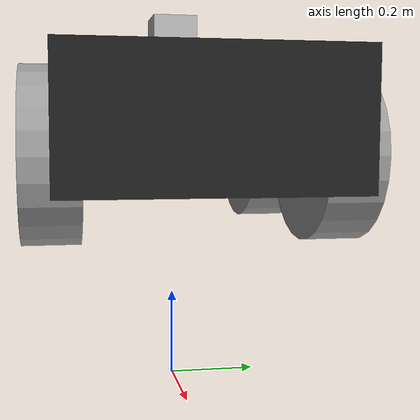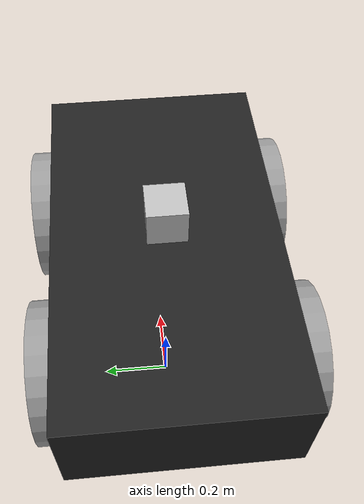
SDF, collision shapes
<?xml version="1.0" ?>
<sdf version="1.4">
  <model name="husky">
    <pose>0 0 .5 0 0 0</pose>
    <link name="base_link">
      <collision name="collision">
        <pose>0 0 0.1 0 -0 0</pose>
        <geometry>
          <box>
            <size>1.0074 0.5709 0.2675</size>
          </box>
        </geometry>
        <max_contacts>10</max_contacts>
        <surface>
          <bounce />
          <friction>
            <ode />
          </friction>
          <contact>
            <ode />
          </contact>
        </surface>
      </collision>
      <inertial>
        <mass>33.855</mass>
        <pose>-0.0856132 -0.000839955 0.238145 0 -0 0</pose>
        <inertia>
          <ixx>2.2343</ixx>
          <ixy>-0.023642</ixy>
          <ixz>0.275174</ixz>
          <iyy>3.42518</iyy>
          <iyz>0.00239624</iyz>
          <izz>2.1241</izz>
        </inertia>
      </inertial>
      <visual name="base">
        <pose>0 0 0 0 -0 0</pose>
        <geometry>
          <mesh>
            <uri>model://husky_wpi/meshes/base_link.stl</uri>
          </mesh>
        </geometry>
        <material>
          <script>
            <name>Gazebo/FlatBlack</name>
            <uri>__default__</uri>
          </script>
        </material>
      </visual>
      <visual name="top_plate">
        <pose>0 0 0 0 -0 0</pose>
        <geometry>
          <mesh>
            <uri>model://husky_wpi/meshes/top_plate.stl</uri>
          </mesh>
        </geometry>
        <material>
          <script>
            <name>Gazebo/Yellow</name>
            <uri>__default__</uri>
          </script>
        </material>
      </visual>
      <visual name="front_bumper">
        <pose>0.47 0 0.091 0 -0 0</pose>
        <geometry>
          <mesh>
            <uri>model://husky_wpi/meshes/bumper.stl</uri>
          </mesh>
        </geometry>
        <material>
          <script>
            <name>Gazebo/FlatBlack</name>
            <uri>__default__</uri>
          </script>
        </material>
      </visual>
      <visual name="rear_bumper">
        <pose>-0.47 0 0.091 0 -0 3.141</pose>
        <geometry>
          <mesh>
            <uri>model://husky_wpi/meshes/bumper.stl</uri>
          </mesh>
        </geometry>
        <material>
          <script>
            <name>Gazebo/FlatBlack</name>
            <uri>__default__</uri>
          </script>
        </material>
      </visual>
      <visual name="user_rail">
        <pose>0.272 0 0.245 0 -0 0</pose>
        <geometry>
          <mesh>
            <uri>model://husky_wpi/meshes/user_rail.stl</uri>
          </mesh>
        </geometry>
        <material>
          <script>
            <name>Gazebo/Grey</name>
            <uri>__default__</uri>
          </script>
        </material>
      </visual>
      <velocity_decay>
        <linear>0</linear>
        <angular>0</angular>
      </velocity_decay>
      <self_collide>0</self_collide>
      <kinematic>0</kinematic>
      <gravity>1</gravity>
    </link>
    <link name="back_left_wheel">
      <pose>-0.256 0.285475 0.035 0 -0 0</pose>
      <inertial>
        <mass>2.6357</mass>
        <pose>0 0 0 0 -0 0</pose>
        <inertia>
          <ixx>0.0246688</ixx>
          <ixy>0</ixy>
          <ixz>0</ixz>
          <iyy>0.0246688</iyy>
          <iyz>0</iyz>
          <izz>0.0441058</izz>
        </inertia>
      </inertial>
      <collision name="back_left_wheel_collision">
        <pose>0 0 0 -1.5707 0 0</pose>
        <geometry>
          <cylinder>
            <radius>0.17775</radius>
            <length>0.1143</length>
          </cylinder>
        </geometry>
        <surface>
          <friction>
            <ode>
              <mu>100000</mu>
              <mu2>100000</mu2>
              <slip1>0</slip1>
              <slip2>0</slip2>
            </ode>
          </friction>
          <bounce />
          <contact>
            <ode />
          </contact>
        </surface>
        <max_contacts>10</max_contacts>
      </collision>
      <visual name="back_left_wheel">
        <pose>0 0 0 -3.14159 0 0</pose>
        <geometry>
          <mesh>
            <uri>model://husky_wpi/meshes/wheel.stl</uri>
          </mesh>
        </geometry>
        <material>
          <script>
            <name>Gazebo/Grey</name>
            <uri>__default__</uri>
          </script>
        </material>
      </visual>
      <velocity_decay>
        <linear>0</linear>
        <angular>0</angular>
      </velocity_decay>
      <self_collide>0</self_collide>
      <kinematic>0</kinematic>
      <gravity>1</gravity>
    </link>
    <joint name="back_left_joint" type="revolute">
      <parent>base_link</parent>
      <child>back_left_wheel</child>
      <axis>
        <xyz>0 1 0</xyz>
        <limit>
          <lower>-1e+16</lower>
          <upper>1e+16</upper>
        </limit>
      </axis>
      <physics>
        <ode>
          <limit>
            <cfm>0</cfm>
            <erp>0.9</erp>
          </limit>
        </ode>
      </physics>
    </joint>
    <link name="back_right_wheel">
      <pose>-0.256 -0.285475 0.035 0 -0 0</pose>
      <inertial>
        <mass>2.6357</mass>
        <pose>0 0 0 0 -0 0</pose>
        <inertia>
          <ixx>0.0246688</ixx>
          <ixy>0</ixy>
          <ixz>0</ixz>
          <iyy>0.0246688</iyy>
          <iyz>0</iyz>
          <izz>0.0441058</izz>
        </inertia>
      </inertial>
      <collision name="back_right_wheel_collision">
        <pose>0 0 0 -1.5707 0 0</pose>
        <geometry>
          <cylinder>
            <radius>0.17775</radius>
            <length>0.1143</length>
          </cylinder>
        </geometry>
        <surface>
          <friction>
            <ode>
              <mu>100000</mu>
              <mu2>100000</mu2>
              <slip1>0</slip1>
              <slip2>0</slip2>
            </ode>
          </friction>
          <bounce />
          <contact>
            <ode />
          </contact>
        </surface>
        <max_contacts>10</max_contacts>
      </collision>
      <visual name="back_right_wheel">
        <pose>0 0 0 -3.14159 0 0</pose>
        <geometry>
          <mesh>
            <uri>model://husky_wpi/meshes/wheel.stl</uri>
          </mesh>
        </geometry>
        <material>
          <script>
            <name>Gazebo/Grey</name>
            <uri>__default__</uri>
          </script>
        </material>
      </visual>
      <velocity_decay>
        <linear>0</linear>
        <angular>0</angular>
      </velocity_decay>
      <self_collide>0</self_collide>
      <kinematic>0</kinematic>
      <gravity>1</gravity>
    </link>
    <joint name="back_right_joint" type="revolute">
      <parent>base_link</parent>
      <child>back_right_wheel</child>
      <axis>
        <xyz>0 1 0</xyz>
        <limit>
          <lower>-1e+16</lower>
          <upper>1e+16</upper>
        </limit>
      </axis>
      <physics>
        <ode>
          <limit>
            <cfm>0</cfm>
            <erp>0.9</erp>
          </limit>
        </ode>
      </physics>
    </joint>
    <link name="front_left_wheel">
      <pose>0.256 0.285475 0.035 0 -0 0</pose>
      <inertial>
        <mass>2.6357</mass>
        <pose>0 0 0 0 -0 0</pose>
        <inertia>
          <ixx>0.0246688</ixx>
          <ixy>0</ixy>
          <ixz>0</ixz>
          <iyy>0.0246688</iyy>
          <iyz>0</iyz>
          <izz>0.0441058</izz>
        </inertia>
      </inertial>
      <collision name="front_left_wheel_collision">
        <pose>0 0 0 -1.5707 0 0</pose>
        <geometry>
          <cylinder>
            <radius>0.17775</radius>
            <length>0.1143</length>
          </cylinder>
        </geometry>
        <surface>
          <friction>
            <ode>
              <mu>100000</mu>
              <mu2>100000</mu2>
              <slip1>0</slip1>
              <slip2>0</slip2>
            </ode>
          </friction>
          <bounce />
          <contact>
            <ode />
          </contact>
        </surface>
        <max_contacts>10</max_contacts>
      </collision>
      <visual name="front_left_wheel">
        <pose>0 0 0 -3.14159 0 0</pose>
        <geometry>
          <mesh>
            <uri>model://husky_wpi/meshes/wheel.stl</uri>
          </mesh>
        </geometry>
        <material>
          <script>
            <name>Gazebo/Grey</name>
            <uri>__default__</uri>
          </script>
        </material>
      </visual>
      <velocity_decay>
        <linear>0</linear>
        <angular>0</angular>
      </velocity_decay>
      <self_collide>0</self_collide>
      <kinematic>0</kinematic>
      <gravity>1</gravity>
    </link>
    <joint name="front_left_joint" type="revolute">
      <parent>base_link</parent>
      <child>front_left_wheel</child>
      <axis>
        <xyz>0 1 0</xyz>
        <limit>
          <lower>-1e+16</lower>
          <upper>1e+16</upper>
        </limit>
      </axis>
      <physics>
        <ode>
          <limit>
            <cfm>0</cfm>
            <erp>0.9</erp>
          </limit>
        </ode>
      </physics>
    </joint>
    <link name="front_right_wheel">
      <pose>0.256 -0.285475 0.035 0 -0 0</pose>
      <inertial>
        <mass>2.6357</mass>
        <pose>0 0 0 0 -0 0</pose>
        <inertia>
          <ixx>0.0246688</ixx>
          <ixy>0</ixy>
          <ixz>0</ixz>
          <iyy>0.0246688</iyy>
          <iyz>0</iyz>
          <izz>0.0441058</izz>
        </inertia>
      </inertial>
      <collision name="front_right_wheel_collision">
        <pose>0 0 0 -1.5707 0 0</pose>
        <geometry>
          <cylinder>
            <radius>0.17775</radius>
            <length>0.1143</length>
          </cylinder>
        </geometry>
        <surface>
          <friction>
            <ode>
              <mu>100000</mu>
              <mu2>100000</mu2>
              <slip1>0</slip1>
              <slip2>0</slip2>
            </ode>
          </friction>
          <bounce />
          <contact>
            <ode />
          </contact>
        </surface>
        <max_contacts>10</max_contacts>
      </collision>
      <visual name="front_right_wheel">
        <pose>0 0 0 -3.14159 0 0</pose>
        <geometry>
          <mesh>
            <uri>model://husky_wpi/meshes/wheel.stl</uri>
          </mesh>
        </geometry>
        <material>
          <script>
            <name>Gazebo/Grey</name>
            <uri>__default__</uri>
          </script>
        </material>
      </visual>
      <velocity_decay>
        <linear>0</linear>
        <angular>0</angular>
      </velocity_decay>
      <self_collide>0</self_collide>
      <kinematic>0</kinematic>
      <gravity>1</gravity>
    </link>
    <joint name="front_right_joint" type="revolute">
      <parent>base_link</parent>
      <child>front_right_wheel</child>
      <axis>
        <xyz>0 1 0</xyz>
        <limit>
          <lower>-1e+16</lower>
          <upper>1e+16</upper>
        </limit>
      </axis>
      <physics>
        <ode>
          <limit>
            <cfm>0</cfm>
            <erp>0.9</erp>
          </limit>
        </ode>
      </physics>
    </joint>
    <link name="stereocamera">
      <pose>0 0 .3 0 0 0</pose>
      <inertial>
        <mass>0.1</mass>
      </inertial>
      <collision name="collision">
        <geometry>
          <box>
            <size>0.1 0.1 0.1</size>
          </box>
        </geometry>
      </collision>
      <visual name="visual">
        <geometry>
          <box>
            <size>0.1 0.1 0.1</size>
          </box>
        </geometry>
      </visual>
      <sensor name="camera" type="multicamera">
        <always_on>1</always_on>
        <update_rate>30</update_rate>
        <visualize>false</visualize>
        <camera name="left">
          <pose>0 0.2 0 0 0 0</pose>
          <horizontal_fov>1.047</horizontal_fov>
          <image>
            <width>1080</width>
            <height>720</height>
          </image>
          <clip>
            <near>0.1</near>
            <far>100</far>
          </clip>
        </camera>
        <camera name="right">
          <pose>0 -0.2 0 0 0 0</pose>
          <horizontal_fov>1.047</horizontal_fov>
          <image>
            <width>1080</width>
            <height>720</height>
          </image>
          <clip>
            <near>0.1</near>
            <far>100</far>
          </clip>
        </camera>
        <plugin name="camera_controller" filename="libgazebo_ros_multicamera.so">
          <alwaysOn>true</alwaysOn>
          <updateRate>0.0</updateRate>
          <cameraName>rrbot/camera1</cameraName>
          <imageTopicName>image_raw</imageTopicName>
          <cameraInfoTopicName>camera_info</cameraInfoTopicName>
          <frameName>base_link</frameName>
          <hackBaseline>0.07</hackBaseline>
          <distortionK1>0.0</distortionK1>
          <distortionK2>0.0</distortionK2>
          <distortionK3>0.0</distortionK3>
          <distortionT1>0.0</distortionT1>
          <distortionT2>0.0</distortionT2>
        </plugin>
      </sensor>
    </link>
    <joint name="stereo_camera_joint" type="revolute">
      <child>stereocamera</child>
      <parent>base_link</parent>
      <axis>
        <xyz>0 0 1</xyz>
        <limit>
          <upper>0</upper>
          <lower>0</lower>
        </limit>
      </axis>
    </joint>
    <plugin name="husky_plugin" filename="libhusky_plugin.so">
      <alwaysOn>true</alwaysOn>
      <updateRate>100.0</updateRate>
      <backLeftJoint>back_left_joint</backLeftJoint>
      <backRightJoint>back_right_joint</backRightJoint>
      <frontLeftJoint>front_left_joint</frontLeftJoint>
      <frontRightJoint>front_right_joint</frontRightJoint>
      <wheelSeparation>0.5709</wheelSeparation>
      <wheelDiameter>0.3555</wheelDiameter>
      <torque>35</torque>
      <topicName>cmd_vel</topicName>
    </plugin>
  </model>
</sdf>
